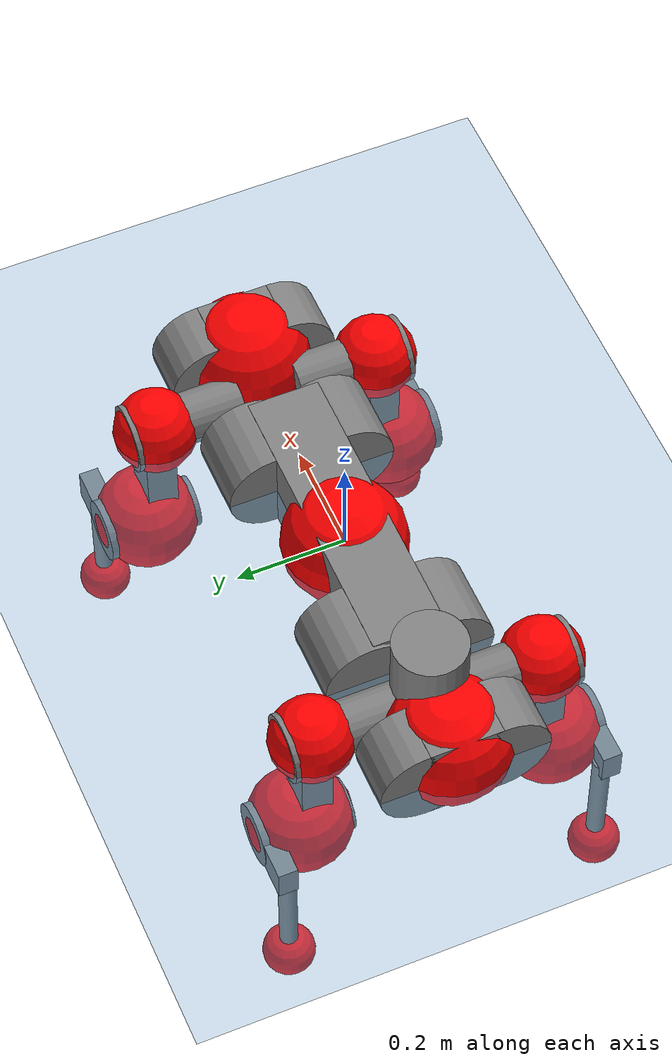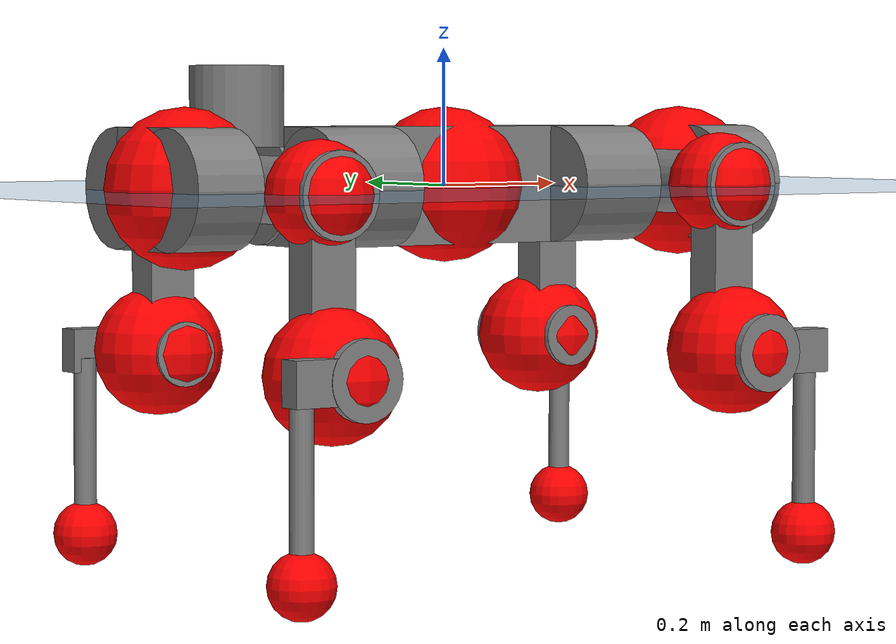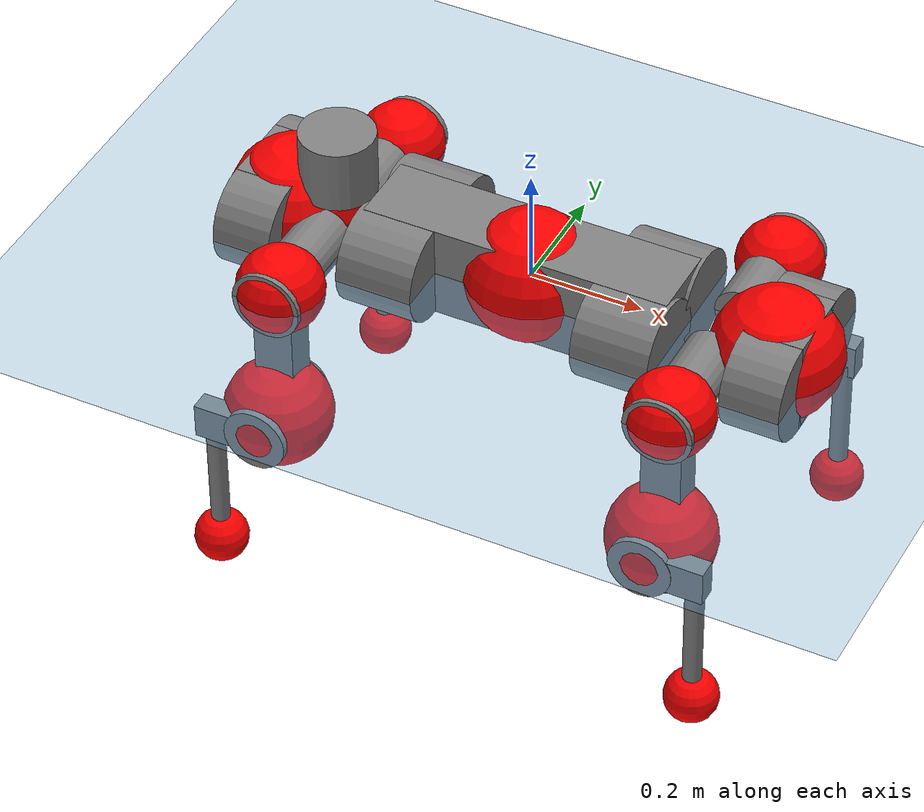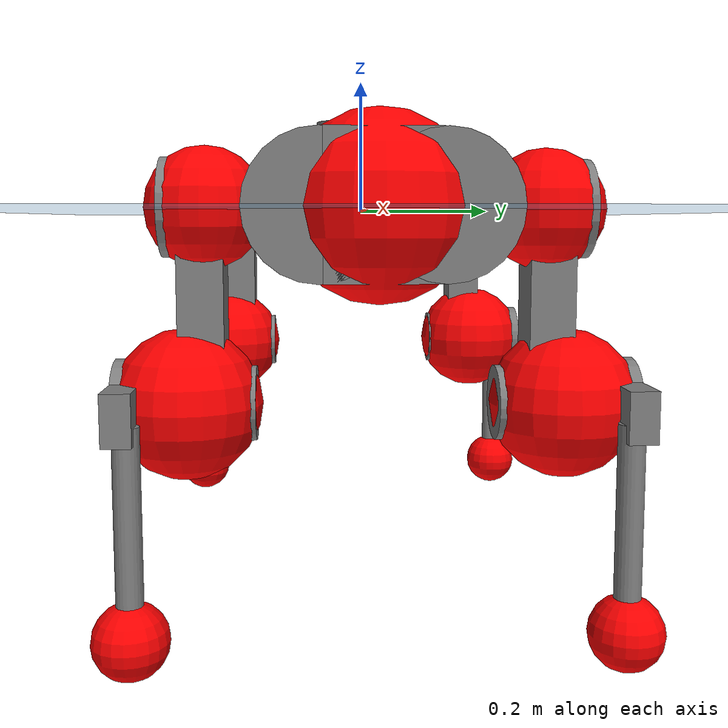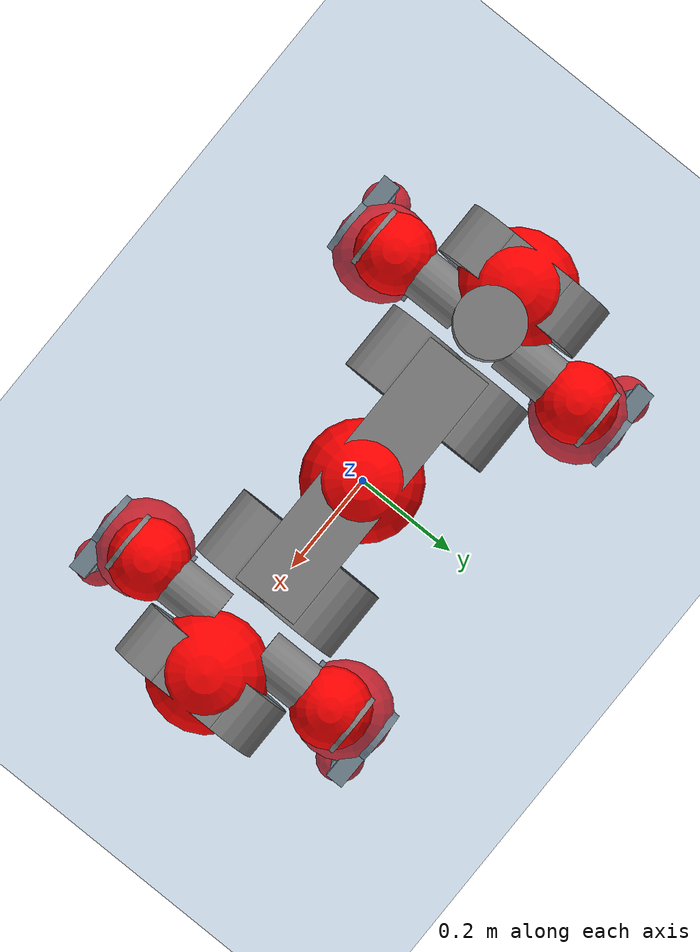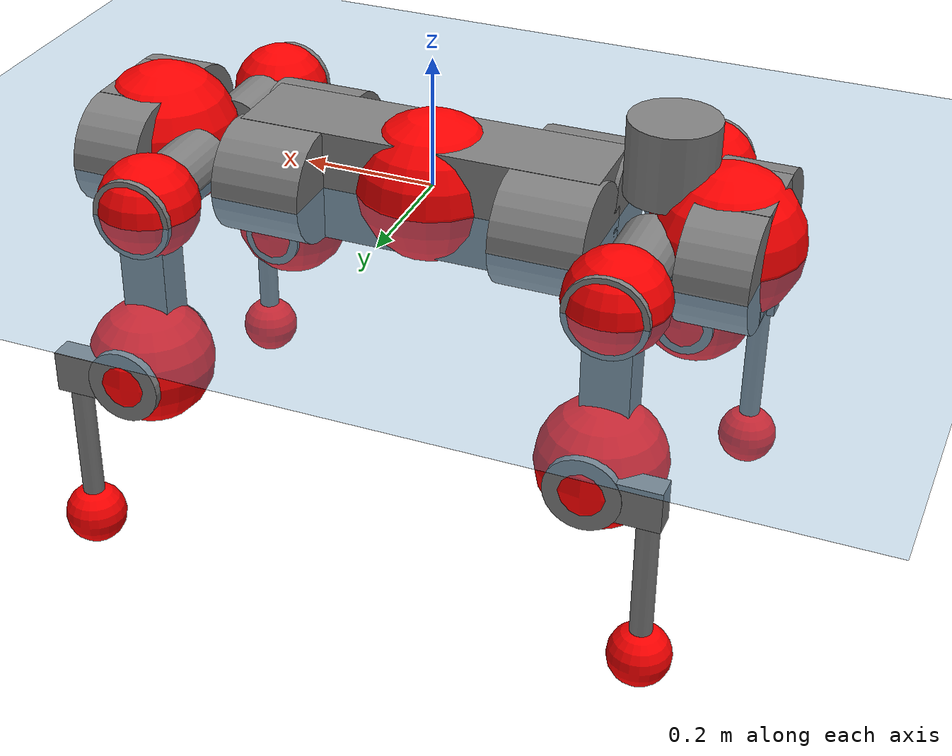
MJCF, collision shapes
<mujoco model="anymal_c">
  <compiler angle="radian" assetdir="assets" balanceinertia="true" inertiafromgeom="false"/>

  <option timestep="0.005" density="1.2" viscosity="2e-05"/>

  <size nkey="1"/>

  <visual>
    <quality shadowsize="8192"/>
    <map shadowclip="0.5"/>
  </visual>

  <default>
    <default class="/">
      <material specular="0" shininess="0.25"/>
      <geom contype="0" conaffinity="0" group="1" solref="-1000 -80"/>
      <site size="0.01 0.005 0.005" group="5"/>
      <general forcelimited="true" forcerange="-80 80" biastype="affine" gainprm="80" biasprm="0 -80 -2"/>
      <default class="anymal_c">
        <joint armature="0.01" damping="0.01" frictionloss="0.1"/>
        <default class="visual">
          <geom type="mesh" group="2"/>
          <default class="visual_zflip"/>
        </default>
        <default class="collision">
          <geom type="cylinder" group="3"/>
          <default class="foot">
            <geom size="0.03 0 0" type="sphere" condim="6" priority="1" friction="0.8 0.02 0.01" solimp="0.015 1 0.03"/>
          </default>
        </default>
      </default>
      <default class="reward_collision_sphere">
        <geom group="5" rgba="1 0 0 1"/>
      </default>
    </default>
  </default>

  <asset>
    <texture type="skybox" colorspace="auto" name="//unnamed_texture_0" builtin="gradient" rgb1="0.95 0.95 0.95" rgb2="0.95 0.95 0.95" width="100" height="600"/>
    <texture type="2d" colorspace="auto" name="texplane" builtin="checker" rgb1="0.345 0.575 0.748" rgb2="0.345 0.575 0.748" markrgb="1 1 1" width="512" height="512"/>
    <texture type="2d" colorspace="linear" name="base" file="base.png"/>
    <texture type="2d" colorspace="linear" name="top_shell" file="top_shell.png"/>
    <texture type="2d" colorspace="linear" name="bottom_shell" file="bottom_shell.png"/>
    <texture type="2d" colorspace="linear" name="remote" file="remote.png"/>
    <texture type="2d" colorspace="linear" name="hatch" file="hatch.png"/>
    <texture type="2d" colorspace="linear" name="handle" file="handle.png"/>
    <texture type="2d" colorspace="linear" name="face" file="face.png"/>
    <texture type="2d" colorspace="linear" name="battery" file="battery.png"/>
    <texture type="2d" colorspace="linear" name="lidar_cage" file="lidar_cage.png"/>
    <texture type="2d" colorspace="linear" name="depth_camera" file="depth_camera.png"/>
    <texture type="2d" colorspace="linear" name="wide_angle_camera" file="wide_angle_camera.png"/>
    <texture type="2d" colorspace="linear" name="lidar" file="lidar.png"/>
    <texture type="2d" colorspace="linear" name="drive" file="drive.png"/>
    <texture type="2d" colorspace="linear" name="hip_l" file="hip_l.png"/>
    <texture type="2d" colorspace="linear" name="shank_l" file="shank_l.png"/>
    <texture type="2d" colorspace="linear" name="foot" file="foot.png"/>
    <texture type="2d" colorspace="linear" name="thigh" file="thigh.png"/>
    <texture type="2d" colorspace="linear" name="shank_r" file="shank_r.png"/>
    <texture type="2d" colorspace="linear" name="hip_r" file="hip_r.png"/>
    <material name="MatPlane" class="/" texture="texplane" texuniform="true" texrepeat="2 2" specular="0.9" shininess="0.5"/>
    <material name="black_plastic" class="/" rgba="0.007 0.007 0.007 1"/>
    <material name="green" class="/" rgba="0.052 0.178 0.033 1"/>
    <material name="red" class="/" rgba="0.178 0.006 0.005 1"/>
    <material name="yellow" class="/" rgba="0.178 0.119 0.006 1"/>
    <material name="lwl" class="/" rgba="0.8 0.8 0.8 1"/>
    <material name="base" class="/" texture="base"/>
    <material name="top_shell" class="/" texture="top_shell"/>
    <material name="bottom_shell" class="/" texture="bottom_shell"/>
    <material name="hip_l" class="/" texture="hip_l"/>
    <material name="thigh" class="/" texture="thigh"/>
    <material name="shank_l" class="/" texture="shank_l"/>
    <material name="foot" class="/" texture="foot"/>
    <material name="hip_r" class="/" texture="hip_r"/>
    <material name="shank" class="/" texture="shank_r"/>
    <material name="hatch" class="/" texture="hatch"/>
    <material name="remote" class="/" texture="remote"/>
    <material name="handle" class="/" texture="handle"/>
    <material name="face" class="/" texture="face"/>
    <material name="depth_camera" class="/" texture="depth_camera"/>
    <material name="wide_angle_camera" class="/" texture="wide_angle_camera"/>
    <material name="battery" class="/" texture="battery"/>
    <material name="lidar_cage" class="/" texture="lidar_cage"/>
    <material name="lidar" class="/" texture="lidar"/>
    <material name="drive" class="/" texture="drive"/>
    <mesh name="base_0" class="/" file="base_0.obj"/>
    <mesh name="base_1" class="/" file="base_1.obj"/>
    <mesh name="base_2" class="/" file="base_2.obj"/>
    <mesh name="base_3" class="/" file="base_3.obj"/>
    <mesh name="base_4" class="/" file="base_4.obj"/>
    <mesh name="base_5" class="/" file="base_5.obj"/>
    <mesh name="top_shell" class="/" file="top_shell.obj"/>
    <mesh name="bottom_shell" class="/" file="bottom_shell.obj"/>
    <mesh name="remote" class="/" file="remote.obj"/>
    <mesh name="handle" class="/" file="handle.obj"/>
    <mesh name="face" class="/" file="face.obj"/>
    <mesh name="wide_angle_camera" class="/" file="wide_angle_camera.obj"/>
    <mesh name="depth_camera" class="/" file="depth_camera.obj"/>
    <mesh name="battery" class="/" file="battery.obj"/>
    <mesh name="lidar_cage" class="/" file="lidar_cage.obj"/>
    <mesh name="lidar" class="/" file="lidar.obj"/>
    <mesh name="drive" class="/" file="drive.obj"/>
    <mesh name="hip_l" class="/" file="hip_l.obj"/>
    <mesh name="thigh" class="/" file="thigh.obj"/>
    <mesh name="shank_l" class="/" file="shank_l.obj"/>
    <mesh name="foot" class="/" file="foot.obj"/>
    <mesh name="hip_r" class="/" file="hip_r.obj"/>
    <mesh name="hatch" class="/" file="hatch.obj"/>
    <mesh name="shank_r" class="/" file="shank_r.obj"/>
  </asset>

  <worldbody>
    <geom name="floor" class="/" size="100 100 0.125" type="plane" group="0" material="MatPlane"/>
    <light name="toplight_shadow" class="/" pos="0 0 5" dir="0.0990148 0.0990148 -0.990148" type="directional" ambient="0.04 0.04 0.04" diffuse="0.55 0.55 0.55" specular="0.12 0.12 0.12"/>
    <light name="toplight_fill" class="/" pos="0 0 5" dir="0.0990148 0.0990148 -0.990148" type="directional" castshadow="false" ambient="0.04 0.04 0.04" diffuse="0.3 0.3 0.3" specular="0.08 0.08 0.08"/>
    <body name="trunk" childclass="anymal_c" pos="0.000886284 -0.000469638 0.00176063" quat="1 0.000167351 0.000305813 0.000322713">
      <inertial pos="0.00193647 0.000324723 0.0362414" quat="0.50162 0.497447 0.501224 0.499699" mass="15.3789" diaginertia="0.542663 0.594901 0.0943739"/>
      <joint name="//unnamed_joint_0" type="free" armature="0" damping="0" frictionloss="0"/>
      <geom name="//unnamed_geom_1" class="visual" material="green" mesh="base_0"/>
      <geom name="//unnamed_geom_2" class="visual" material="yellow" mesh="base_1"/>
      <geom name="//unnamed_geom_3" class="visual" material="red" mesh="base_2"/>
      <geom name="//unnamed_geom_4" class="visual" material="black_plastic" mesh="base_3"/>
      <geom name="//unnamed_geom_5" class="visual" material="lwl" mesh="base_4"/>
      <geom name="//unnamed_geom_6" class="visual" material="base" mesh="base_5"/>
      <geom name="trunk_1" class="collision" size="0.273553 0.0660299 0.0848956" type="box"/>
      <geom name="trunk_2" class="collision" size="0.0848956 0.0683882" pos="0.212177 0.0701008 0" quat="0.707107 0 0.707107 0"/>
      <geom name="trunk_3" class="collision" size="0.0848956 0.0683882" pos="-0.212177 0.0701008 0" quat="0.707107 0 0.707107 0"/>
      <geom name="trunk_4" class="collision" size="0.0848956 0.0683882" pos="0.212177 -0.0701008 0" quat="0.707107 0 0.707107 0"/>
      <geom name="trunk_5" class="collision" size="0.0848956 0.0683882" pos="-0.212177 -0.0701008 0" quat="0.707107 0 0.707107 0"/>
      <geom name="//unnamed_geom_12" class="visual" material="top_shell" mesh="top_shell"/>
      <geom name="//unnamed_geom_13" class="visual" material="bottom_shell" mesh="bottom_shell"/>
      <geom name="//unnamed_geom_14" class="visual" material="remote" mesh="remote"/>
      <geom name="//unnamed_geom_15" class="visual" material="handle" mesh="handle"/>
      <geom name="//unnamed_geom_16" class="visual" pos="0.404355 0 0" quat="1 0 0 0" material="face" mesh="face"/>
      <geom name="trunk_6" class="collision" size="0.0518807 0.0660299 0.0848956" pos="0.458009 0 0" type="box"/>
      <geom name="//unnamed_geom_18" class="collision" size="0.0848956 0.0518807" pos="0.458009 0.0701008 0" quat="0.707107 0 0.707107 0"/>
      <geom name="//unnamed_geom_19" class="collision" size="0.0848956 0.0518807" pos="0.458009 -0.0701008 0" quat="0.707107 0 0.707107 0"/>
      <geom name="//unnamed_geom_20" class="visual" pos="0.450346 0 -0.0239724" quat="0.965926 0 0.258819 0" material="depth_camera" mesh="depth_camera"/>
      <geom name="//unnamed_geom_21" class="visual" pos="0.500444 0 0.0127678" material="wide_angle_camera" mesh="wide_angle_camera"/>
      <geom name="//unnamed_geom_22" class="visual_zflip" pos="-0.404355 0 0" quat="0 0 0 1" material="face" mesh="face"/>
      <geom name="trunk_7" class="collision" size="0.0518807 0.0660299 0.0848956" pos="-0.458009 0 0" quat="0 0 0 1" type="box"/>
      <geom name="//unnamed_geom_24" class="collision" size="0.0848956 0.0518807" pos="-0.458009 -0.0701008 0" quat="0 -0.707107 0 0.707107"/>
      <geom name="//unnamed_geom_25" class="collision" size="0.0848956 0.0518807" pos="-0.458009 0.0701008 0" quat="0 -0.707107 0 0.707107"/>
      <geom name="//unnamed_geom_26" class="visual" pos="-0.450346 0 -0.0239724" quat="0 -0.258819 0 0.965926" material="depth_camera" mesh="depth_camera"/>
      <geom name="//unnamed_geom_27" class="visual_zflip" pos="-0.500444 0 0.0127678" quat="0 0 0 1" material="wide_angle_camera" mesh="wide_angle_camera"/>
      <geom name="//unnamed_geom_28" class="visual" material="battery" mesh="battery"/>
      <geom name="//unnamed_geom_29" class="visual" pos="0 0.0769051 0.0257085" quat="0.683013 -0.183013 0.183013 0.683013" material="depth_camera" mesh="depth_camera"/>
      <geom name="//unnamed_geom_30" class="visual" pos="0 -0.0769051 0.0257085" quat="0.683013 0.183013 0.183013 -0.683013" material="depth_camera" mesh="depth_camera"/>
      <geom name="//unnamed_geom_31" class="visual" pos="-0.355091 0 0.0626874" quat="1 0 0 0" material="lidar_cage" mesh="lidar_cage"/>
      <geom name="trunk_8" class="collision" size="0.0660299 0.0565971" pos="-0.355091 0 0.113861"/>
      <geom name="//unnamed_geom_33" class="visual" pos="-0.355091 1.01813e-05 0.121281" quat="0.707107 0 0 -0.707107" material="lidar" mesh="lidar"/>
      <geom name="//unnamed_geom_34" class="visual" pos="0.29256 0.104097 2.5625e-09" quat="0.258819 0.965926 0 0" material="drive" mesh="drive"/>
      <geom name="//unnamed_geom_35" class="visual" pos="0.29256 -0.104097 -2.5625e-09" quat="0.258819 -0.965926 0 0" material="drive" mesh="drive"/>
      <geom name="//unnamed_geom_36" class="visual" pos="-0.29256 0.104097 -2.5625e-09" quat="0 0 0.965926 -0.258819" material="drive" mesh="drive"/>
      <geom name="//unnamed_geom_37" class="visual" pos="-0.29256 -0.104097 2.5625e-09" quat="0 0 -0.965926 -0.258819" material="drive" mesh="drive"/>
      <geom name="//unnamed_geom_38" class="visual" pos="0.113161 0 0.062261" quat="1 0 0 0" material="hatch" mesh="hatch"/>
      <geom name="//unnamed_geom_39" class="reward_collision_sphere" size="0.113194"/>
      <geom name="//unnamed_geom_40" class="reward_collision_sphere" size="0.113194" pos="0.438986 0 0"/>
      <geom name="//unnamed_geom_41" class="reward_collision_sphere" size="0.113194" pos="-0.438986 0 0"/>
      <site name="imu" pos="0.251693 0.0191832 0.0355214" size="0.00943285"/>
      <camera name="track" pos="0 -2.00288 0" quat="0.707107 0.707107 0 0" mode="trackcom"/>
      <camera name="ego_camera" pos="0.438986 0 -0.0341156" quat="-0.5 -0.5 0.5 0.5"/>
      <body name="LF_HIP" pos="0.292428 0.107711 0.0019049" quat="0.258573 0.965992 0.000175288 0.000237156">
        <inertial pos="0.0558399 -0.0158701 -0.0054225" quat="-0.132368 0.707911 -0.141374 0.67923" mass="2.25624" diaginertia="0.00510394 0.00466301 0.00144862"/>
        <joint name="LF_HAA" pos="0 0 0" axis="1 0.000688635 -0.000602463" range="-0.701537 0.537417" armature="0.0093564" damping="0.00131751" frictionloss="0.105667"/>
        <geom name="//unnamed_geom_42" class="visual" pos="0 0.00015074 -2.4759e-05" quat="0.258819 -0.965926 0 0" material="hip_l" mesh="hip_l"/>
        <geom name="//unnamed_geom_43" class="visual" pos="0.0584339 -0.0710936 -0.0399471" quat="0.183013 -0.683013 0.683013 0.183013" material="drive" mesh="drive"/>
        <geom name="//unnamed_geom_44" class="collision" size="0.0471642 0.0660299" pos="0.0584339 -0.011977 -0.00588921" quat="-0.353553 -0.612372 0.612372 -0.353553"/>
        <body name="LF_THIGH" pos="0.0580511 -0.0712259 -0.0366415" quat="0.183049 -0.683151 0.682982 0.182573">
          <inertial pos="0.0303771 -0.000841887 -0.208937" quat="0.992451 -0.0166043 -0.0808062 0.0907527" mass="2.65106" diaginertia="0.0274109 0.0302215 0.00187833"/>
          <joint name="LF_HFE" pos="0 0 0" axis="0.999996 0.00144502 -0.00238968" range="-3.19009 3.14413" armature="0.00891382" damping="0.0145099" frictionloss="0.0936281"/>
          <geom name="//unnamed_geom_45" class="visual" pos="-0.000515607 -8.12476e-07 0" quat="0.707107 0 0 -0.707107" material="thigh" mesh="thigh"/>
          <geom name="//unnamed_geom_46" class="collision" size="0.0613135 0.0377314" pos="0.039021 0 0" quat="0.5 0.5 -0.5 -0.5"/>
          <geom name="//unnamed_geom_47" class="collision" size="0.0353732 0.0282985 0.133299" pos="0.0292657 0 -0.120525" quat="0.707107 0 0 -0.707107" type="box"/>
          <geom name="//unnamed_geom_48" class="visual" pos="0.0978451 0 -0.243074" quat="1 0 0 0" material="drive" mesh="drive"/>
          <geom name="//unnamed_geom_49" class="collision" size="0.0471642 0.0660299" pos="0.0295584 0 -0.243074" quat="0.707107 0 0.707107 0"/>
          <geom name="//unnamed_geom_50" class="reward_collision_sphere" size="0.0754628" pos="0.0243881 0 0"/>
          <body name="LF_SHANK" pos="0.100845 -0.000902649 -0.243472" quat="1 -4.19239e-05 5.26792e-05 3.27165e-06">
            <inertial pos="0.00806358 -0.0601175 -0.0685343" quat="0.992904 -0.116669 -0.00237213 -0.0228971" mass="0.494096" diaginertia="0.00915225 0.00944136 0.000513537"/>
            <joint name="LF_KFE" pos="0 0 0" axis="0.999987 0.0014027 -0.00483753" stiffness="0.00147023" range="-3.08968 3.18308" armature="0.00845265" damping="0" frictionloss="0.084492"/>
            <geom name="//unnamed_geom_51" class="visual" pos="-0.000168128 -0.000896469 0" quat="0.707107 0 0 -0.707107" material="shank_l" mesh="shank_l"/>
            <geom name="LF_kfe_act" class="collision" size="0.0565971 0.0188657" pos="0.0195105 0 0" quat="0.5 0.5 -0.5 -0.5"/>
            <geom name="//unnamed_geom_53" class="collision" size="0.0542379 0.0318359 0.0179224" pos="0.0195105 -0.0575818 0" quat="0.5 0.5 -0.5 -0.5" type="box"/>
            <geom name="//unnamed_geom_54" class="visual" pos="0.0127306 -0.0883655 -0.288251" quat="0.382683 0 0 -0.92388" material="foot" mesh="foot"/>
            <geom name="LF_calf" class="collision" size="0.0165075 0.133241" pos="0.0127306 -0.0880766 -0.144126" quat="0.707107 0 0 -0.707107"/>
            <geom name="LF_foot" class="foot" size="0.0299404" pos="0.0127306 -0.0880766 -0.269061" quat="0.707107 0 0 -0.707107"/>
            <geom name="//unnamed_geom_57" class="reward_collision_sphere" size="0.0943285" pos="-0.0487762 0 0"/>
            <geom name="//unnamed_geom_58" class="reward_collision_sphere" size="0.0471642" pos="0.0127306 -0.0880766 -0.269061"/>
            <site name="LF_foot" class="foot" pos="0.0127306 -0.0880766 -0.269061" quat="0.707107 0 0 -0.707107" size="0.00943285"/>
          </body>
        </body>
      </body>
      <body name="RF_HIP" pos="0.290689 -0.103295 0.00251805" quat="0.258261 -0.966074 0.000987695 -0.000445581">
        <inertial pos="0.0526433 0.0154979 -0.00656765" quat="0.135915 0.671984 0.130387 0.716215" mass="2.2023" diaginertia="0.00510766 0.00484942 0.00145609"/>
        <joint name="RF_HAA" pos="0 0 0" axis="0.999953 0.0088838 0.00386363" range="-0.45825 0.676103" armature="0.0104639" damping="0" frictionloss="0.102847"/>
        <geom name="//unnamed_geom_59" class="visual" pos="0 -0.000150739 -2.47589e-05" quat="0.258819 0.965926 0 0" material="hip_r" mesh="hip_r"/>
        <geom name="//unnamed_geom_60" class="visual" pos="0.0584339 0.0710936 -0.0399471" quat="0.183013 0.683013 0.683013 -0.183013" material="drive" mesh="drive"/>
        <geom name="//unnamed_geom_61" class="collision" size="0.0471642 0.0660299" pos="0.0584339 0.011977 -0.00588921" quat="-0.353553 0.612372 0.612372 0.353553"/>
        <body name="RF_THIGH" pos="0.0577085 0.0705366 -0.0377485" quat="0.18317 0.683625 0.682448 -0.182673">
          <inertial pos="0.0275671 -0.000844122 -0.211514" quat="0.9919 -0.0149805 -0.081406 0.0963517" mass="2.59108" diaginertia="0.0263201 0.0297364 0.00194017"/>
          <joint name="RF_HFE" pos="0 0 0" axis="0.999971 0.00334392 -0.00680611" range="-3.13416 3.09436" armature="0.00805993" damping="0.0233719" frictionloss="0.0910148"/>
          <geom name="//unnamed_geom_62" class="visual" pos="-0.000515607 -8.12476e-07 0" quat="0.707107 0 0 -0.707107" material="thigh" mesh="thigh"/>
          <geom name="//unnamed_geom_63" class="collision" size="0.0613135 0.0377314" pos="0.039021 0 0" quat="0.5 0.5 0.5 0.5"/>
          <geom name="//unnamed_geom_64" class="collision" size="0.0353732 0.0282985 0.133299" pos="0.0292657 0 -0.120525" quat="0.707107 0 0 0.707107" type="box"/>
          <geom name="//unnamed_geom_65" class="visual" pos="0.0978451 0 -0.243074" quat="1 0 0 0" material="drive" mesh="drive"/>
          <geom name="//unnamed_geom_66" class="collision" size="0.0471642 0.0660299" pos="0.0295584 0 -0.243074" quat="0.707107 0 0.707107 0"/>
          <geom name="//unnamed_geom_67" class="reward_collision_sphere" size="0.0754628" pos="0.0243881 0 0"/>
          <body name="RF_SHANK" pos="0.0988534 0.00196386 -0.24286" quat="0.999999 -5.57019e-05 0.000954364 0.000298598">
            <inertial pos="0.00338786 0.0620571 -0.0679217" quat="0.993708 0.107429 -0.0070593 0.0308815" mass="0.489978" diaginertia="0.00910284 0.00937156 0.000498042"/>
            <joint name="RF_KFE" pos="0 0 0" axis="0.99993 -0.00619876 -0.0100436" range="-3.13375 3.11802" armature="0.00967659" damping="0" frictionloss="0.0823109"/>
            <geom name="//unnamed_geom_68" class="visual" pos="-0.000168127 0.000896467 0" quat="0.707107 0 0 0.707107" material="shank" mesh="shank_r"/>
            <geom name="RF_kfe_act" class="collision" size="0.0565971 0.0188657" pos="0.0195105 0 0" quat="0.5 0.5 0.5 0.5"/>
            <geom name="//unnamed_geom_70" class="collision" size="0.0542379 0.0318359 0.0179224" pos="0.0195105 0.0575818 0" quat="0.5 0.5 0.5 0.5" type="box"/>
            <geom name="//unnamed_geom_71" class="visual" pos="0.0127306 0.0883655 -0.288251" quat="0.382683 0 0 0.92388" material="foot" mesh="foot"/>
            <geom name="RF_calf" class="collision" size="0.0165075 0.133241" pos="0.0127306 0.0880766 -0.144126" quat="0.707107 0 0 0.707107"/>
            <geom name="RF_foot" class="foot" size="0.0288318" pos="0.0127306 0.0880766 -0.269061" quat="0.707107 0 0 0.707107"/>
            <geom name="//unnamed_geom_74" class="reward_collision_sphere" size="0.0943285" pos="-0.0487762 0 0"/>
            <geom name="//unnamed_geom_75" class="reward_collision_sphere" size="0.0471642" pos="0.0127306 0.0880766 -0.269061"/>
            <site name="RF_foot" class="foot" pos="0.0127306 0.0880766 -0.269061" quat="0.707107 0 0 0.707107" size="0.00943285"/>
          </body>
        </body>
      </body>
      <body name="LH_HIP" pos="-0.291675 0.102905 0.00161978" quat="-0.0014543 0.000446739 0.965763 -0.259421">
        <inertial pos="0.0528147 0.0157962 -0.0052699" quat="0.136041 0.688859 0.125885 0.700799" mass="2.25348" diaginertia="0.00487287 0.00498452 0.00142839"/>
        <joint name="LH_HAA" pos="0 0 0" axis="1 -3.60883e-05 -8.99125e-05" range="-0.488485 0.705153" armature="0.00950887" damping="0.00250079" frictionloss="0.0937528"/>
        <geom name="//unnamed_geom_76" class="visual" pos="0 -0.000150739 -2.47589e-05" quat="-0.258819 -0.965926 0 0" material="hip_r" mesh="hip_r"/>
        <geom name="//unnamed_geom_77" class="visual" pos="0.0584339 0.0710936 -0.0399471" quat="0.183013 0.683013 0.683013 -0.183013" material="drive" mesh="drive"/>
        <geom name="//unnamed_geom_78" class="collision" size="0.0471642 0.0660299" pos="0.0584339 0.011977 -0.00588921" quat="-0.353553 0.612372 0.612372 0.353553"/>
        <body name="LH_THIGH" pos="0.0577026 0.0725449 -0.0394764" quat="0.182911 0.683478 0.682561 -0.183065">
          <inertial pos="0.0276962 -0.00125898 -0.207193" quat="0.992821 -0.00583268 -0.080593 0.0881923" mass="2.5044" diaginertia="0.025476 0.0294828 0.00185722"/>
          <joint name="LH_HFE" pos="0 0 0" axis="0.999951 0.00655965 0.00739222" stiffness="0.00942359" range="-3.17783 3.1275" armature="0.0089914" damping="0.0202067" frictionloss="0.106834"/>
          <geom name="//unnamed_geom_79" class="visual" pos="-0.000515607 -8.12476e-07 0" quat="0.707107 0 0 -0.707107" material="thigh" mesh="thigh"/>
          <geom name="//unnamed_geom_80" class="collision" size="0.0613135 0.0377314" pos="0.039021 0 0" quat="0.5 0.5 -0.5 -0.5"/>
          <geom name="//unnamed_geom_81" class="collision" size="0.0353732 0.0282985 0.133299" pos="0.0292657 0 -0.120525" quat="0.707107 0 0 -0.707107" type="box"/>
          <geom name="//unnamed_geom_82" class="visual" pos="0.0978451 0 -0.243074" quat="1 0 0 0" material="drive" mesh="drive"/>
          <geom name="//unnamed_geom_83" class="collision" size="0.0471642 0.0660299" pos="0.0295584 0 -0.243074" quat="0.707107 0 0.707107 0"/>
          <geom name="//unnamed_geom_84" class="reward_collision_sphere" size="0.0754628" pos="0.0243881 0 0"/>
          <body name="LH_SHANK" pos="0.0959378 -0.0021478 -0.242494" quat="1 0.000277564 -0.000195883 -0.000190043">
            <inertial pos="0.00684342 0.0627582 -0.0667276" quat="0.992797 0.117036 0.00171477 0.0255669" mass="0.482237" diaginertia="0.00887186 0.00886531 0.000513325"/>
            <joint name="LH_KFE" pos="0 0 0" axis="0.999991 0.00257052 0.00340154" range="-3.11995 3.19371" armature="0.00907214" damping="0.018659" frictionloss="0.0940392"/>
            <geom name="//unnamed_geom_85" class="visual" pos="-0.000168127 0.000896467 0" quat="-0.707107 0 0 -0.707107" material="shank" mesh="shank_r"/>
            <geom name="LH_kfe_act" class="collision" size="0.0565971 0.0188657" pos="0.0195105 0 0" quat="0.5 0.5 -0.5 -0.5"/>
            <geom name="//unnamed_geom_87" class="collision" size="0.0542379 0.0318359 0.0179224" pos="0.0195105 0.0575818 0" quat="0.5 0.5 -0.5 -0.5" type="box"/>
            <geom name="//unnamed_geom_88" class="visual" pos="0.0127306 0.0883655 -0.288251" quat="-0.382683 0 0 -0.92388" material="foot" mesh="foot"/>
            <geom name="LH_calf" class="collision" size="0.0165075 0.133241" pos="0.0127306 0.0880766 -0.144126" quat="0.707107 0 0 -0.707107"/>
            <geom name="LH_foot" class="foot" size="0.0312649" pos="0.0127306 0.0880766 -0.269061" quat="0.707107 0 0 -0.707107"/>
            <geom name="//unnamed_geom_91" class="reward_collision_sphere" size="0.0943285" pos="-0.0487762 0 0"/>
            <geom name="//unnamed_geom_92" class="reward_collision_sphere" size="0.0471642" pos="0.0127306 0.0880766 -0.269061"/>
            <site name="LH_foot" class="foot" pos="0.0127306 0.0880766 -0.269061" quat="0.707107 0 0 -0.707107" size="0.00943285"/>
          </body>
        </body>
      </body>
      <body name="RH_HIP" pos="-0.295068 -0.104462 -0.000319467" quat="0.000131502 9.18557e-05 -0.965785 -0.259344">
        <inertial pos="0.0547322 -0.0174275 -0.00719917" quat="-0.13118 0.710152 -0.133516 0.678711" mass="2.36204" diaginertia="0.0049852 0.0047873 0.00149582"/>
        <joint name="RH_HAA" pos="0 0 0" axis="0.999912 -0.00860457 0.0100812" range="-0.776792 0.491972" armature="0.00931653" damping="0.00917346" frictionloss="0.0826517"/>
        <geom name="//unnamed_geom_93" class="visual" pos="0 0.00015074 -2.4759e-05" quat="-0.258819 0.965926 0 0" material="hip_l" mesh="hip_l"/>
        <geom name="//unnamed_geom_94" class="visual" pos="0.0584339 -0.0710936 -0.0399471" quat="-0.183013 0.683013 -0.683013 -0.183013" material="drive" mesh="drive"/>
        <geom name="//unnamed_geom_95" class="collision" size="0.0471642 0.0660299" pos="0.0584339 -0.011977 -0.00588921" quat="0.353553 0.612372 -0.612372 0.353553"/>
        <body name="RH_THIGH" pos="0.05773 -0.0721442 -0.0364639" quat="-0.183454 0.683171 -0.682623 -0.183435">
          <inertial pos="0.0330334 -0.00247995 -0.209162" quat="0.993392 -0.00403213 -0.0732404 0.0882765" mass="2.56275" diaginertia="0.0258434 0.029419 0.0018769"/>
          <joint name="RH_HFE" pos="0 0 0" axis="0.999937 -0.000471903 0.011194" range="-3.16051 3.12594" armature="0.00908701" damping="0" frictionloss="0.0829339"/>
          <geom name="//unnamed_geom_96" class="visual" pos="-0.000515607 -8.12476e-07 0" quat="0.707107 0 0 -0.707107" material="thigh" mesh="thigh"/>
          <geom name="//unnamed_geom_97" class="collision" size="0.0613135 0.0377314" pos="0.039021 0 0" quat="0.5 0.5 0.5 0.5"/>
          <geom name="//unnamed_geom_98" class="collision" size="0.0353732 0.0282985 0.133299" pos="0.0292657 0 -0.120525" quat="0.707107 0 0 0.707107" type="box"/>
          <geom name="//unnamed_geom_99" class="visual" pos="0.0978451 0 -0.243074" quat="1 0 0 0" material="drive" mesh="drive"/>
          <geom name="//unnamed_geom_100" class="collision" size="0.0471642 0.0660299" pos="0.0295584 0 -0.243074" quat="0.707107 0 0.707107 0"/>
          <geom name="//unnamed_geom_101" class="reward_collision_sphere" size="0.0754628" pos="0.0243881 0 0"/>
          <body name="RH_SHANK" pos="0.0994984 0.00130345 -0.243557" quat="0.999999 0.000120212 0.000393594 0.00126951">
            <inertial pos="0.00819262 -0.0614741 -0.0683349" quat="0.992711 -0.116995 -0.0014523 -0.0288821" mass="0.494822" diaginertia="0.00904306 0.00983058 0.000524483"/>
            <joint name="RH_KFE" pos="0 0 0" axis="0.999931 -0.0106524 0.00491331" stiffness="0.00331141" range="-3.1368 3.09144" armature="0.00910348" damping="0.00867947" frictionloss="0.0826211"/>
            <geom name="//unnamed_geom_102" class="visual" pos="-0.000168128 -0.000896469 0" quat="0.707107 0 0 -0.707107" material="shank_l" mesh="shank_l"/>
            <geom name="RH_kfe_act" class="collision" size="0.0565971 0.0188657" pos="0.0195105 0 0" quat="0.5 0.5 0.5 0.5"/>
            <geom name="//unnamed_geom_104" class="collision" size="0.0542379 0.0318359 0.0179224" pos="0.0195105 -0.0575818 0" quat="0.5 0.5 0.5 0.5" type="box"/>
            <geom name="//unnamed_geom_105" class="visual" pos="0.0127306 -0.0883655 -0.288251" quat="0.382683 0 0 -0.92388" material="foot" mesh="foot"/>
            <geom name="RH_calf" class="collision" size="0.0165075 0.133241" pos="0.0127306 -0.0880766 -0.144126" quat="0.707107 0 0 0.707107"/>
            <geom name="RH_foot" class="foot" size="0.021844" pos="0.0127306 -0.0880766 -0.269061" quat="0.707107 0 0 0.707107"/>
            <geom name="//unnamed_geom_108" class="reward_collision_sphere" size="0.0943285" pos="-0.0487762 0 0"/>
            <geom name="//unnamed_geom_109" class="reward_collision_sphere" size="0.0471642" pos="0.0127306 -0.0880766 -0.269061"/>
            <site name="RH_foot" class="foot" pos="0.0127306 -0.0880766 -0.269061" quat="0.707107 0 0 0.707107" size="0.00943285"/>
          </body>
        </body>
      </body>
    </body>
  </worldbody>

  <contact>
    <pair class="/" geom1="floor" geom2="LF_foot" name="//unnamed_contact_0"/>
    <pair class="/" geom1="floor" geom2="RF_foot" name="//unnamed_contact_1"/>
    <pair class="/" geom1="floor" geom2="LH_foot" name="//unnamed_contact_2"/>
    <pair class="/" geom1="floor" geom2="RH_foot" name="//unnamed_contact_3"/>
  </contact>

  <actuator>
    <general name="LF_HAA" class="/" joint="LF_HAA" forcerange="-78.2457 78.2457" gainprm="77.4833" biasprm="0 -77.4833 -1.9605"/>
    <general name="LF_HFE" class="/" joint="LF_HFE" forcerange="-81.492 81.492" gainprm="77.4833" biasprm="0 -77.4833 -1.9605"/>
    <general name="LF_KFE" class="/" joint="LF_KFE" forcerange="-81.8732 81.8732" gainprm="77.4833" biasprm="0 -77.4833 -1.9605"/>
    <general name="RF_HAA" class="/" joint="RF_HAA" forcerange="-72.527 72.527" gainprm="77.4833" biasprm="0 -77.4833 -1.9605"/>
    <general name="RF_HFE" class="/" joint="RF_HFE" forcerange="-83.7578 83.7578" gainprm="77.4833" biasprm="0 -77.4833 -1.9605"/>
    <general name="RF_KFE" class="/" joint="RF_KFE" forcerange="-78.0411 78.0411" gainprm="77.4833" biasprm="0 -77.4833 -1.9605"/>
    <general name="LH_HAA" class="/" joint="LH_HAA" forcerange="-78.1754 78.1754" gainprm="77.4833" biasprm="0 -77.4833 -1.9605"/>
    <general name="LH_HFE" class="/" joint="LH_HFE" forcerange="-80.2065 80.2065" gainprm="77.4833" biasprm="0 -77.4833 -1.9605"/>
    <general name="LH_KFE" class="/" joint="LH_KFE" forcerange="-74.0355 74.0355" gainprm="77.4833" biasprm="0 -77.4833 -1.9605"/>
    <general name="RH_HAA" class="/" joint="RH_HAA" forcerange="-75.9819 75.9819" gainprm="77.4833" biasprm="0 -77.4833 -1.9605"/>
    <general name="RH_HFE" class="/" joint="RH_HFE" forcerange="-68.6427 68.6427" gainprm="77.4833" biasprm="0 -77.4833 -1.9605"/>
    <general name="RH_KFE" class="/" joint="RH_KFE" forcerange="-81.6192 81.6192" gainprm="77.4833" biasprm="0 -77.4833 -1.9605"/>
  </actuator>

  <sensor>
    <gyro site="imu" name="imu_angular_velocity"/>
    <velocimeter site="imu" name="imu_linear_velocity"/>
    <framelinvel objtype="site" objname="LF_foot" name="LF_foot_global_linear_velocity"/>
    <framelinvel objtype="site" objname="RF_foot" name="RF_foot_global_linear_velocity"/>
    <framelinvel objtype="site" objname="LH_foot" name="LH_foot_global_linear_velocity"/>
    <framelinvel objtype="site" objname="RH_foot" name="RH_foot_global_linear_velocity"/>
  </sensor>

  <keyframe>
    <key name="home" qpos="0 0 0.55 1 0 0 0 0 0.4 -0.8 0 -0.4 0.8 0 -0.4 0.8 0 0.4 -0.8"/>
  </keyframe>
</mujoco>
